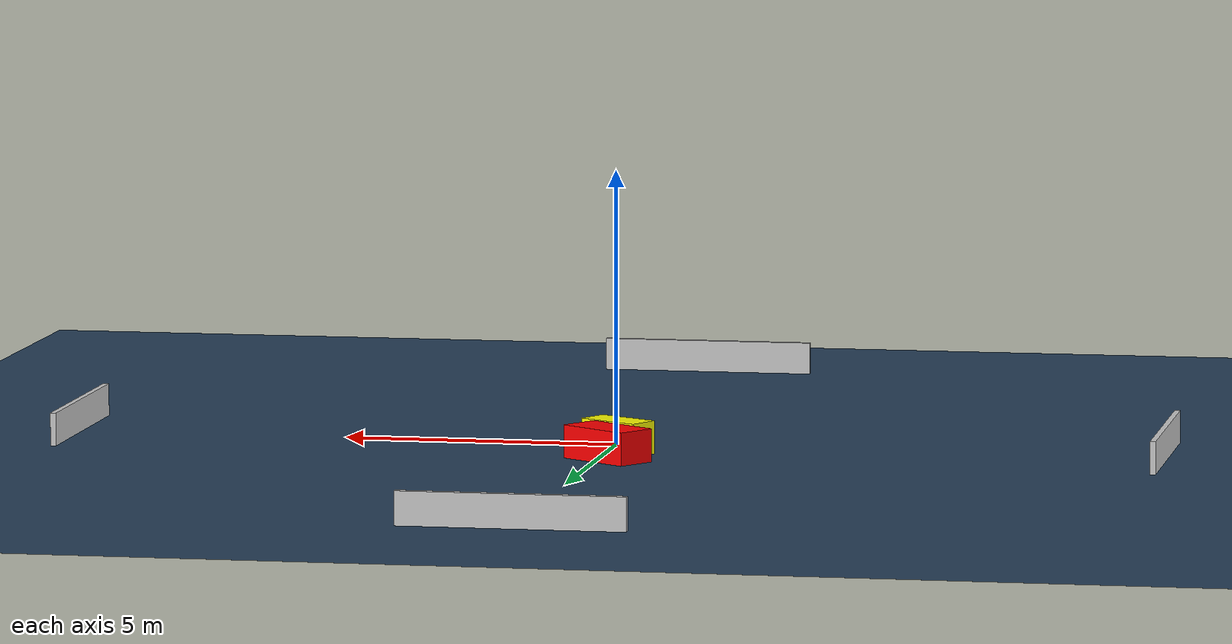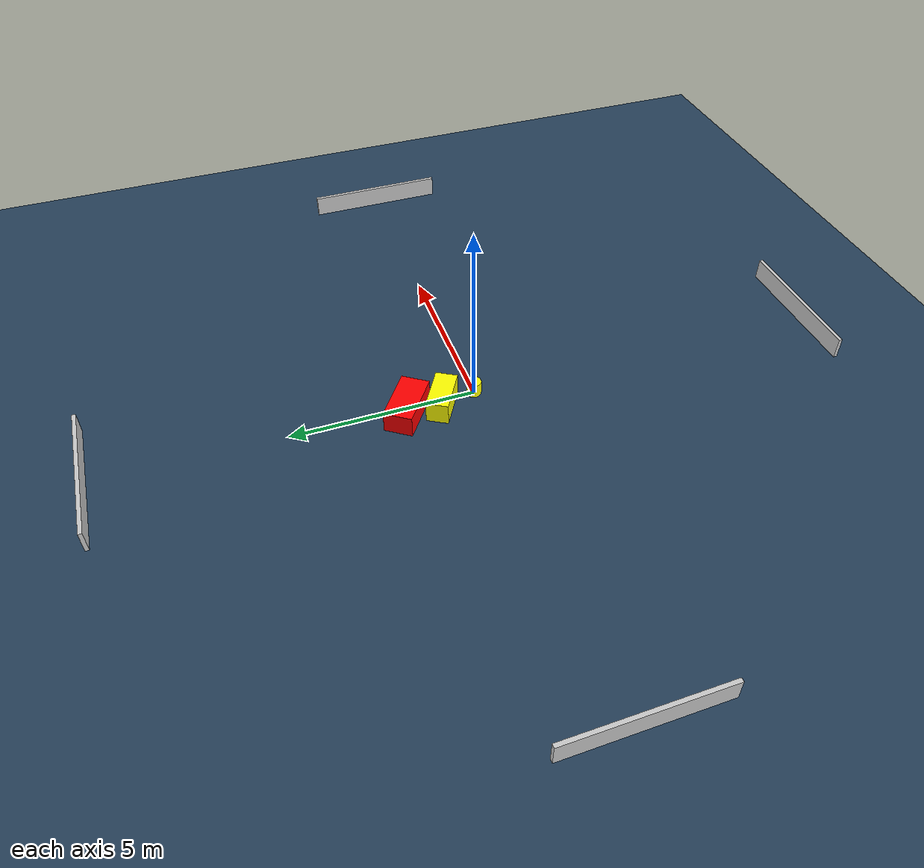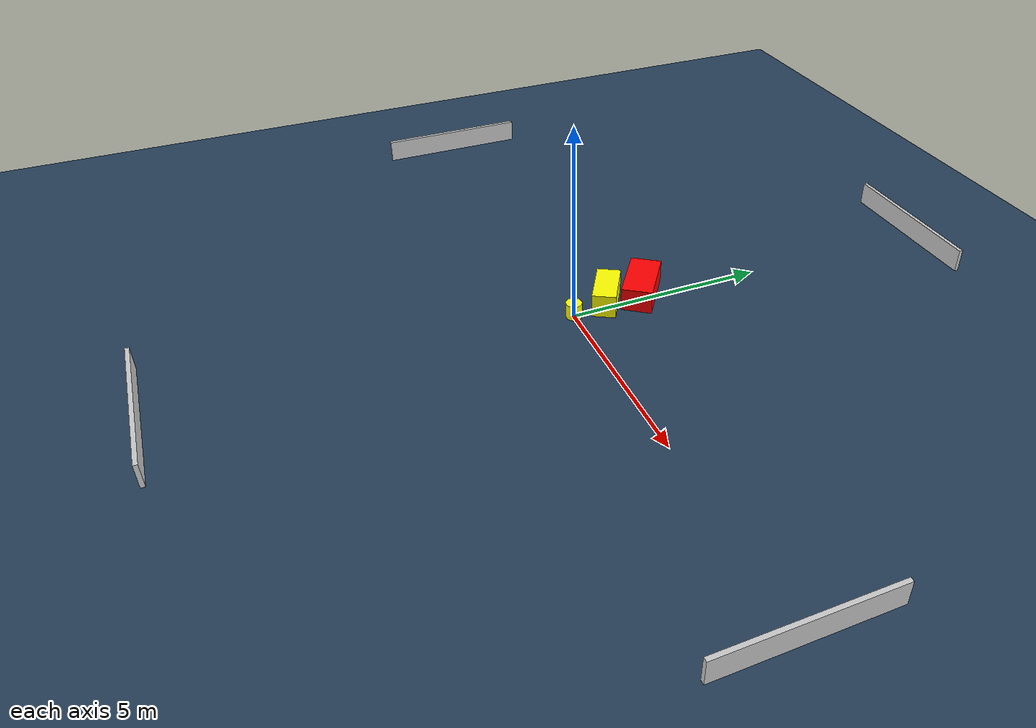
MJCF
<?xml version="1.0" ?>
<mujoco model="generated_environment">
  <option timestep="0.01" integrator="RK4" cone="elliptic"/>
  <default>
    <geom density="1"/>
  </default>
  <asset>
    <texture builtin="gradient" height="3072" name="skybox" rgb1="0.3 0.5 0.7" rgb2="0 0 0" type="skybox" width="512"/>
    <texture builtin="checker" height="300" name="groundplane" rgb1="0.2 0.3 0.4" rgb2="0.1 0.2 0.3" type="2d" width="300"/>
    <material name="groundplane" reflectance="0.2" texrepeat="5 5" texture="groundplane"/>
  </asset>
  <worldbody>
    <light dir="0 0 -1" directional="true" pos="0 0 1.5"/>
    <geom condim="3" friction="0.5 0.005 0.001" material="groundplane" name="floor" pos="0 0 0" size="0 0 0.05" type="plane"/>
    <body name="walls">
      <geom name="wall_1" condim="4" pos="-10.0 0.0 0.3" rgba="0.800000011920929 0.800000011920929 0.800000011920929 1.0" size="0.05 2.0 0.3" type="box"/>
      <geom name="wall_2" condim="4" pos="10.0 0.0 0.3" rgba="0.800000011920929 0.800000011920929 0.800000011920929 1.0" size="0.05 2.0 0.3" type="box"/>
      <geom name="wall_3" condim="4" pos="0.0 -10.0 0.3" rgba="0.800000011920929 0.800000011920929 0.800000011920929 1.0" size="2.0 0.05 0.3" type="box"/>
      <geom name="wall_4" condim="4" pos="0.0 10.0 0.3" rgba="0.800000011920929 0.800000011920929 0.800000011920929 1.0" size="2.0 0.05 0.3" type="box"/>
    </body>
    <body name="robot">
      <joint name="joint_x" type="slide" pos="0 0 0" axis="1 0 0"/>
      <joint name="joint_y" type="slide" pos="0 0 0" axis="0 1 0"/>
      <geom name="robot" type="cylinder" pos="0.0 0.0 0.2" size="0.2 0.2 0.0" mass="5.0" friction="1.0 0.005 0.0001" condim="4" rgba="1.0 1.0 0.0 1.0"/>
    </body>
    <body name="obstacle_1_movable">
      <geom name="obstacle_1_movable" condim="4" pos="-0.2120908263214716 0.956449330455521 0.3" euler="0 0 149.84597048745314" friction="0.0 0.005 0.001" rgba="1.0 1.0 0.0 1.0" size="0.6084649408514018 0.29677751510168165 0.3" type="box" mass="0.1"/>
      <joint type="free"/>
    </body>
    <body name="obstacle_2_static">
      <geom name="obstacle_2_static" condim="4" pos="-0.19171565952541836 1.9039876301364993 0.3" euler="0 0 54.80910405554805" friction="0.0 0.005 0.001" rgba="1.0 0.0 0.0 1.0" size="0.38499980266978673 0.7342496260264477 0.3" type="box"/>
    </body>
  </worldbody>
  <actuator>
    <motor name="actuator_x" joint="joint_x" gear="1" ctrlrange="-1 1"/>
    <motor name="actuator_y" joint="joint_y" gear="1" ctrlrange="-1 1"/>
  </actuator>
</mujoco>
